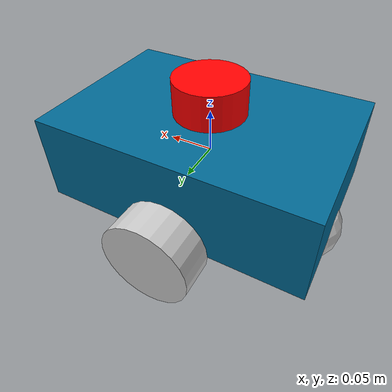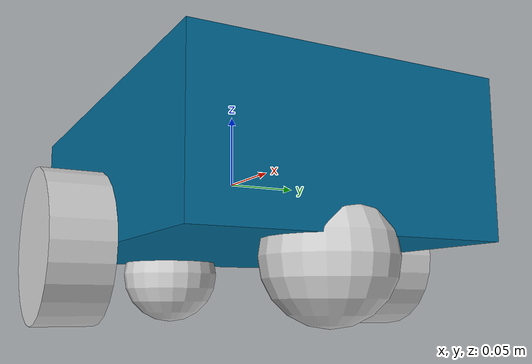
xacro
<?xml version="1.0"?>
<robot name="rover" xmlns:xacro="http://www.ros.org/wiki/xacro">
    <gazebo reference="laser_frame_joint">
        <preserveFixedJoint>true</preserveFixedJoint>
        <disableFixedJointLumping>true</disableFixedJointLumping>
    </gazebo>

    <gazebo>
        <plugin filename="gz-sim-joint-state-publisher-system"
            name="gz::sim::systems::JointStatePublisher">
        </plugin>
    </gazebo>

    <xacro:property name="wheel_radius" value="0.05"/>
    <xacro:property name="wheel_thickness" value="0.04"/>
    <xacro:property name="chassis_length" value="0.30"/>
    <xacro:property name="chassis_width" value="0.20"/>
    <xacro:property name="chassis_height" value="0.10"/>
    <xacro:property name="sphere_radius" value="0.04"/>

    <xacro:macro name="inertial_box" params="mass x y z *origin">
    <inertial>
        <xacro:insert_block name="origin"/>
        <mass value="${mass}"/>
        <inertia ixx="${(1/12)*mass*(y*y+z*z)}" ixy="0" ixz="0"
                 iyy="${(1/12)*mass*(x*x+z*z)}" iyz="0"
                 izz="${(1/12)*mass*(x*x+y*y)}"/>
    </inertial>
    </xacro:macro>

    <xacro:macro name="inertial_cylinder" params="mass height radius *origin">
    <inertial>
        <xacro:insert_block name="origin"/>
        <mass value="${mass}"/>
        <inertia ixx="${(1/12)*mass*(3*radius*radius + height*height)}" ixy="0" ixz="0"
                 iyy="${(1/12)*mass*(3*radius*radius + height*height)}" iyz="0"
                 izz="${(1/2)*mass*radius*radius}"/>
    </inertial>
    </xacro:macro>

    <xacro:macro name="inertial_sphere" params="mass radius *origin">
    <inertial>
        <xacro:insert_block name="origin"/>
        <mass value="${mass}"/>
        <inertia ixx="${(2/5)*mass*radius*radius}" ixy="0" ixz="0"
                 iyy="${(2/5)*mass*radius*radius}" iyz="0"
                 izz="${(2/5)*mass*radius*radius}"/>
    </inertial>
    </xacro:macro>

    <link name="base_link">
        <visual>
            <geometry>
                <box size="${chassis_length} ${chassis_width} ${chassis_height}"/>
            </geometry>
            <origin xyz="0 0 0" rpy="0 0 0"/>
            <material name="chasis">
                <color rgba="0.0 0.41 0.58 1.0"/>
            </material>
        </visual>
        <collision>
            <geometry>
                <box size="${chassis_length} ${chassis_width} ${chassis_height}"/>
            </geometry>
            <origin xyz="0 0 0" rpy="0 0 0"/>
        </collision>
        <xacro:inertial_box mass="0.5" x="${chassis_length}" y="${chassis_width}" z="${chassis_height}">
            <origin xyz="0 0 0" rpy="0 0 0"/>
        </xacro:inertial_box>
    </link>

    <xacro:macro name="wheel" params="prefix y_offset">
        <link name="${prefix}_wheel">
            <visual>
                <geometry>
                    <cylinder length="${wheel_thickness}" radius="${wheel_radius}"/>
                </geometry>
                <origin rpy="1.5708 0 0"/>
                <material name="${prefix}_wheel">
                    <color rgba="0.8 0.8 0.8 1.0"/>
                </material>
            </visual>
            <collision>
                <geometry>
                    <cylinder length="${wheel_thickness}" radius="${wheel_radius}"/>
                </geometry>
                <origin rpy="1.5708 0 0"/>
            </collision>
            <xacro:inertial_cylinder mass="0.1" height="${wheel_thickness}" radius="${wheel_radius}">
                <origin xyz="0 0 0" rpy="1.5708 0 0"/>
            </xacro:inertial_cylinder>
        </link>

        <joint name="${prefix}_wheel_joint" type="continuous">
            <parent link="base_link"/>
            <child link="${prefix}_wheel"/>
            <origin xyz="0 ${y_offset} -0.05" rpy="0 0 0"/>
            <axis xyz="0 1 0"/>
        </joint>
    </xacro:macro>

    <xacro:wheel prefix="left" y_offset="0.12"/>
    <xacro:wheel prefix="right" y_offset="-0.12"/>

    <xacro:macro name="caster" params="prefix x_offset">
        <link name="${prefix}_caster">
            <visual>
                <geometry>
                    <sphere radius="${sphere_radius}"/>
                </geometry>
                <material name="${prefix}_caster">
                    <color rgba="0.8 0.8 0.8 1.0"/>
                </material>
            </visual>
            <collision>
                <geometry>
                    <sphere radius="${sphere_radius}"/>
                </geometry>
            </collision>
            <xacro:inertial_sphere mass="0.05" radius="${sphere_radius}">
                <origin xyz="0 0 0" rpy="0 0 0"/>
            </xacro:inertial_sphere>
        </link>

        <joint name="${prefix}_caster_joint" type="fixed">
            <parent link="base_link"/>
            <child link="${prefix}_caster"/>
            <origin xyz="${x_offset} 0 -0.06" rpy="0 0 0"/>
        </joint>
    </xacro:macro>

    <xacro:caster prefix="front" x_offset="0.12"/>
    <xacro:caster prefix="rear" x_offset="-0.12"/>

    <link name="laser_frame">
        <visual>
            <geometry>
                <cylinder radius="0.04" length="0.04"/>
            </geometry>
            <material name="laser_frame">
                <color rgba="1.0 0.0 0.0 1.0"/>
            </material>
        </visual>
        <collision>
            <geometry>
                <cylinder radius="0.04" length="0.04"/>
            </geometry>
        </collision>
        <xacro:inertial_cylinder mass="0.02" height="0.04" radius="0.04">
            <origin xyz="0 0 0" rpy="0 0 0"/>
        </xacro:inertial_cylinder>
    </link>

    <joint name="laser_frame_joint" type="fixed">
        <parent link="base_link"/>
        <child link="laser_frame"/>
        <origin xyz="0 0 0.07" rpy="0 0 0"/>
    </joint>

    <gazebo reference="laser_frame">
        <sensor name="laser" type="gpu_lidar">
            <topic>scan</topic>
            <update_rate>10</update_rate>
            <gz_frame_id>laser_frame</gz_frame_id>
            <lidar>
            <scan>
                <horizontal>
                <samples>360</samples>
                <resolution>1</resolution>
                <min_angle>-3.141592</min_angle>
                <max_angle>3.141592</max_angle>
                </horizontal>
            </scan>
            <range>
                <min>0.15</min>
                <max>12.0</max>
                <resolution>0.01</resolution>
            </range>
            </lidar>
            <always_on>1</always_on>
            <visualize>true</visualize>
        </sensor>
    </gazebo>

    <gazebo>
        <plugin filename="gz-sim-diff-drive-system" name="gz::sim::systems::DiffDrive">
            <left_joint>left_wheel_joint</left_joint>
            <right_joint>right_wheel_joint</right_joint>
            <wheel_separation>0.24</wheel_separation>
            <wheel_radius>${wheel_radius}</wheel_radius>
            <topic>cmd_vel</topic>
            <odom_publish_frequency>30</odom_publish_frequency>
            <frame_id>odom</frame_id>
            <child_frame_id>base_link</child_frame_id>
        </plugin>
    </gazebo>

</robot>
